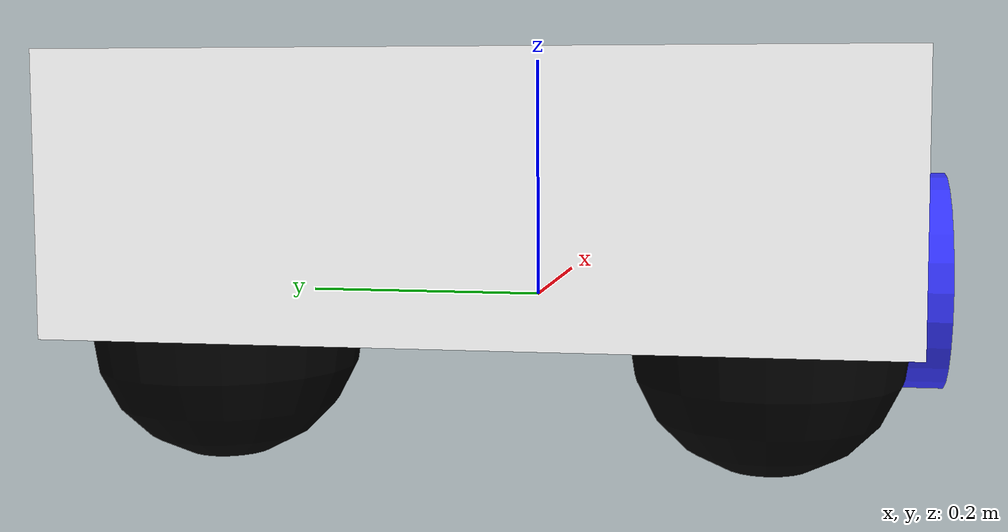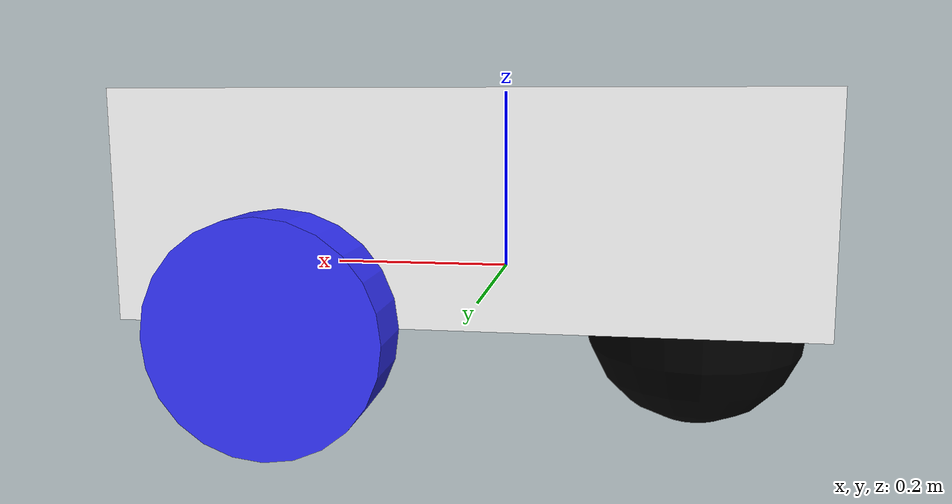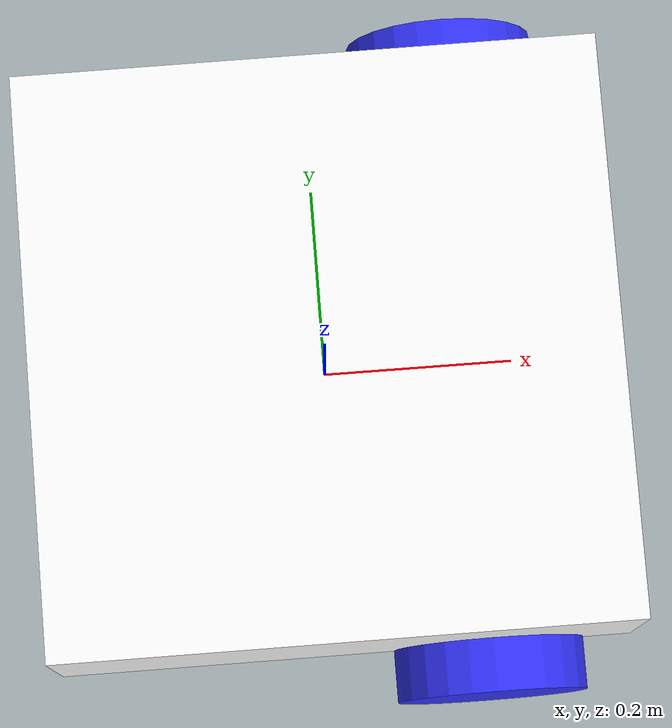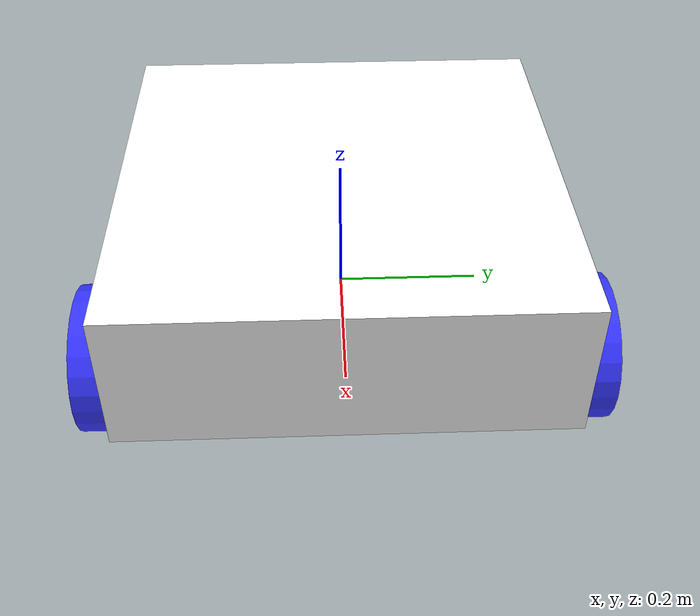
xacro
<?xml version="1.0"?>
<robot xmlns:xacro="http://www.ros.org/wiki/xacro"  name="robot">

    <xacro:include filename="inertial_macros.xacro"/>

    <material name="white">
        <color rgba="1 1 1 1" />
    </material>

    <material name="orange">
        <color rgba="1 0.3 0.1 1" />
    </material>

    <material name="blue">
        <color rgba="0.2 0.2 1 1" />
    </material>

    <material name="black">
        <color rgba="0 0 0 1" />
    </material>

    <material name="red">
        <color rgba="1 0 0 1" />
    </material>

    <!--Base link-->

    <link name="base_link">

    </link>

    <!--Chassis Link  -->

    <joint name="chassis_joint" type="fixed">
        <parent link="base_link"/>
        <child link="chassis_link"/>
        <origin xyz="-0.3 0 0"/>
    </joint>

    <link name="chassis_link">
        <visual>
            <origin xyz="0.3 0 0.1"/>
            <geometry>
                <box size="0.6 0.6 0.2"/>
            </geometry>
            <material name="white"/>
        </visual>

        <collision>
            <origin xyz="0.3 0 0.1"/>
            <geometry>
                <box size="0.6 0.6 0.2"/>
            </geometry>
        </collision>
        <xacro:inertial_box mass="5" x="0.6" y="0.6" z="0.2">
            <origin xyz="0.3 0 0.1" rpy="0 0 0"/>
        </xacro:inertial_box>
    </link>

    <gazebo reference="chassis_link">
        <material>Gazebo/White</material>
    </gazebo>

    <!--FRONT LEFT WHEEL LINK -->

    <joint name="left_wheel_joint" type="continuous">
        <parent link="base_link"/>
        <child link="left_wheel"/>
        <origin xyz="0.15 0.3275 0" rpy="${pi/2} 0 0"/>
        <axis xyz="0 0 -1"/>
    </joint>

    <link name="left_wheel">
        <visual>
            <geometry>
                <cylinder radius="0.10" length="0.055"/>
            </geometry>
            <material name="blue"/>
        </visual>

        <collision>
            <geometry>
                <cylinder radius="0.10" length="0.055"/>
            </geometry>
        </collision>
        <xacro:inertial_cylinder mass="3" radius="0.10" length="0.055">
            <origin xyz="0 0 0" rpy="0 0 0"/>
        </xacro:inertial_cylinder>
    </link>

    <gazebo reference="left_wheel">
        <material>Gazebo/Blue</material>
    </gazebo>

    <!--FRONT RIGHT WHEEL LINK -->

    <joint name="right_wheel_joint" type="continuous">
        <parent link="base_link"/>
        <child link="right_wheel"/>
        <origin xyz="0.15 -0.3275 0" rpy="-${pi/2} 0 0"/>
        <axis xyz="0 0 1"/>
    </joint>

    <link name="right_wheel">
        <visual>
            <geometry>
                <cylinder radius="0.10" length="0.055"/>
            </geometry>
            <material name="blue"/>
        </visual>
        <collision>
            <geometry>
                <cylinder radius="0.10" length="0.055"/>
            </geometry>
        </collision>
        <xacro:inertial_cylinder mass="3" radius="0.10" length="0.055">
            <origin xyz="0 0 0" rpy="0 0 0"/>
        </xacro:inertial_cylinder>
    </link>

    <gazebo reference="right_wheel">
        <material>Gazebo/Blue</material>
    </gazebo>

    <!--LEFT CASTER WHEEL LINK -->

    <joint name="left_caster_wheel_joint" type="fixed">
        <parent link="chassis_link"/>
        <child link="left_caster_wheel"/>
        <origin xyz="0.1 -0.20 0"/>
    </joint>

    <link name="left_caster_wheel">
        <visual>
            <geometry>
                <sphere radius="0.1"/>
            </geometry>
            <material name="black"/>
        </visual>
        <collision>
            <geometry>
                <sphere radius="0.1"/>
            </geometry>
        </collision>
        <xacro:inertial_sphere mass="2" radius="0.1">
            <origin xyz="0 0 0" rpy="0 0 0"/>
        </xacro:inertial_sphere>
    </link>

    <gazebo reference="left_caster_wheel">
        <material>Gazebo/Black</material>
        <mu1 value="0.000001"/>
        <mu2 value="0.000001"/>
    </gazebo>

    <!--RIGHT CASTER WHEEL LINK -->

    <joint name="right_caster_wheel_joint" type="fixed">
        <parent link="chassis_link"/>
        <child link="right_caster_wheel"/>
        <origin xyz="0.1 0.20 0"/>
    </joint>

    <link name="right_caster_wheel">
        <visual>
            <geometry>
                <sphere radius="0.1"/>
            </geometry>
            <material name="black"/>
        </visual>
        <collision>
            <geometry>
                <sphere radius="0.1"/>
            </geometry>
        </collision>
        <xacro:inertial_sphere mass="2" radius="0.1">
            <origin xyz="0 0 0" rpy="0 0 0"/>
        </xacro:inertial_sphere>
    </link>

    <gazebo reference="right_caster_wheel">
        <material>Gazebo/Black</material>
        <mu1 value="0.000001"/>
        <mu2 value="0.000001"/>
    </gazebo>

</robot>
